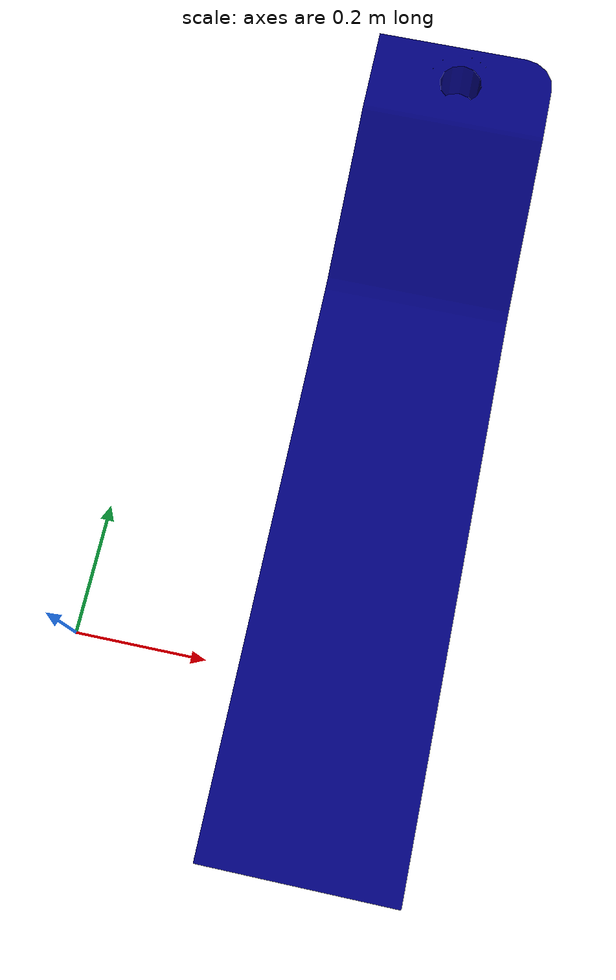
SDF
<sdf version='1.6'>
  <model name='golf_platform'>
    <static> true</static>
    <link name='golf_platform'>
      <pose frame=''>0 0 0 0 -0 0</pose>
      <inertial>
        <pose frame=''>1.0886 -0.14923 0.054595 0 -0 0</pose>
        <mass>14.913</mass>
        <inertia>
          <ixx>0.144284</ixx>
          <ixy>0.00285123</ixy>
          <ixz>0.0929468</ixz>
          <iyy>1.18276</iyy>
          <iyz>-0.00025572</iyz>
          <izz>1.26907</izz>
        </inertia>
      </inertial>
      <collision name='golf_platform_collision'>
        <pose frame=''>0.28 -0.25 0 1.5708 -0 1.5708</pose>
        <geometry>
          <mesh>
            <scale>1 1 1</scale>
            <uri>model://golf_platform/meshes/platform_golf_r1.STL</uri>
          </mesh>
        </geometry>
      </collision>
      <visual name='golf_platform_visual'>
        <pose frame=''>0.25 -0.28 0 1.5708 -0 1.5708</pose>
        <geometry>
          <mesh>
            <scale>1 1 1</scale>
            <uri>model://golf_platform/meshes/platform_golf_r1.STL</uri>
          </mesh>
        </geometry>
        <material>
          <diffuse>0 0 0.5 1</diffuse>
        </material>
      </visual>
    </link>
  </model>
</sdf>
